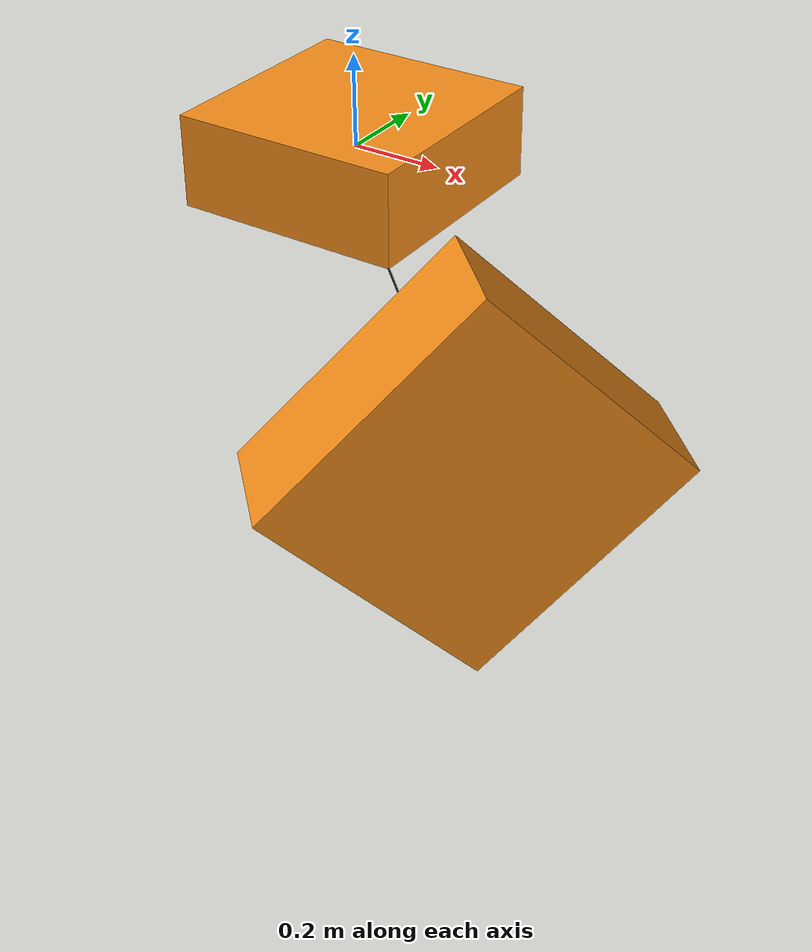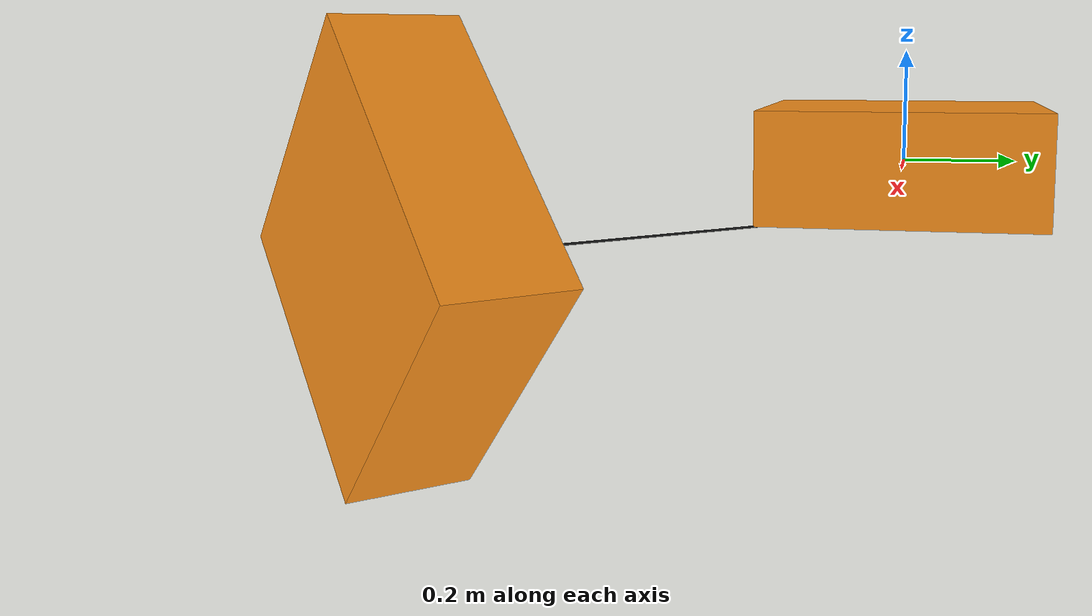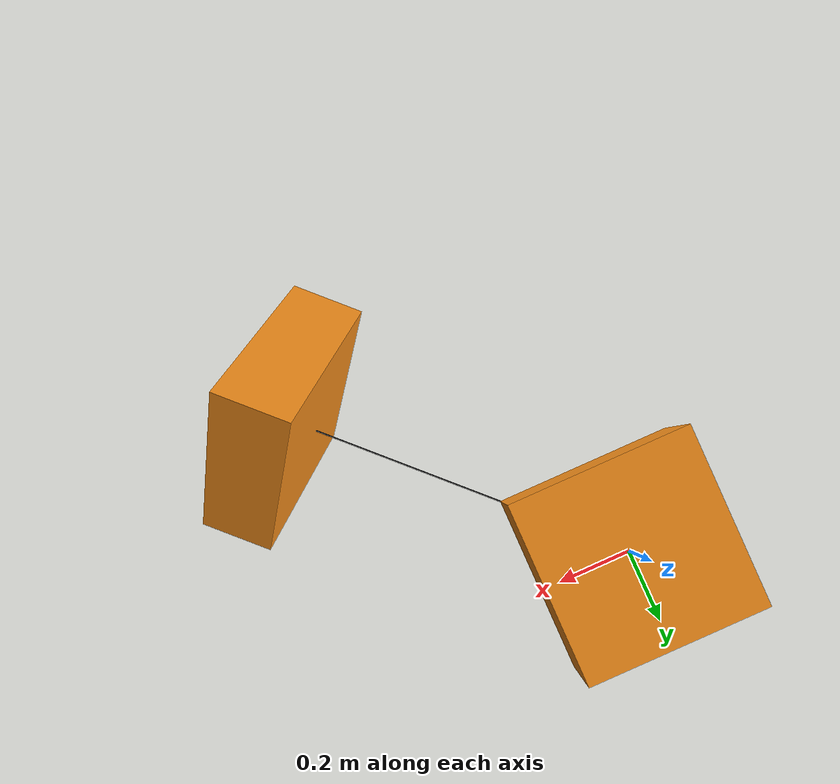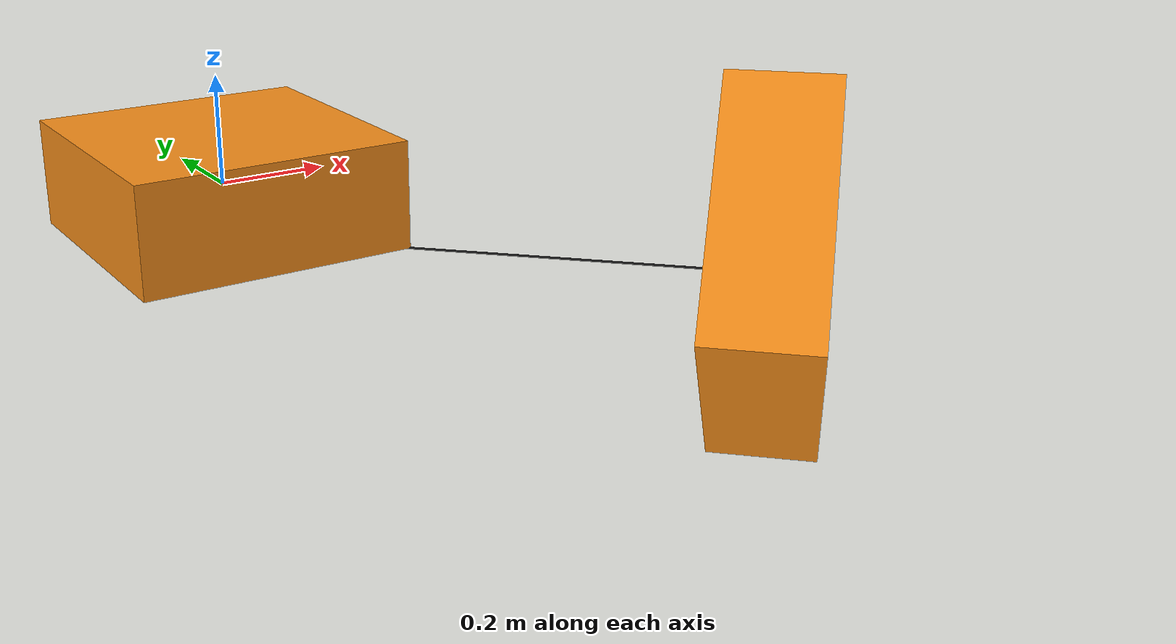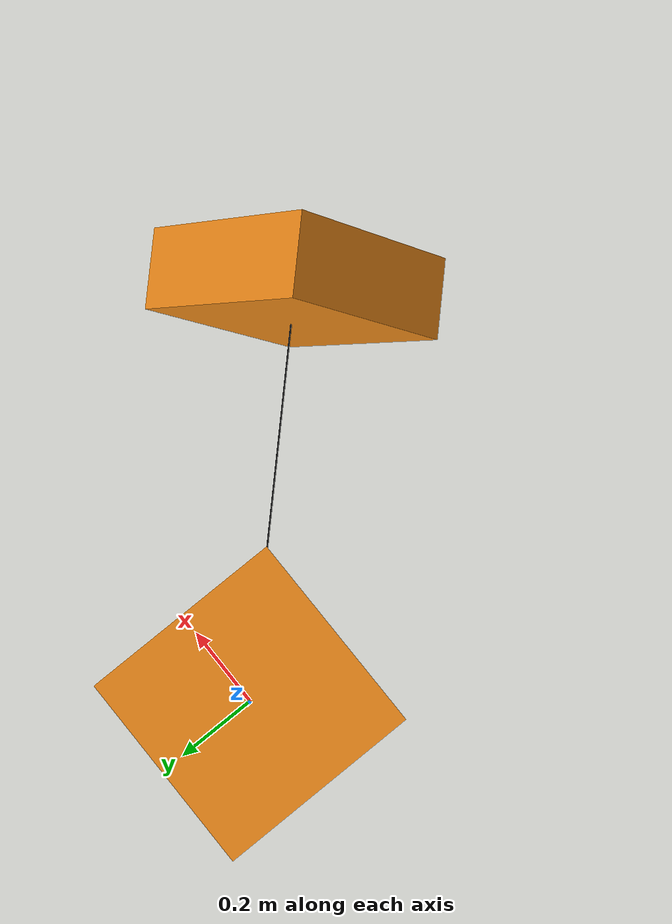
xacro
<?xml version="1.0"?>
<robot name="spherical_pendulum"
       xmlns:xacro="http://www.ros.org/wiki/xacro">

    <!-- Constants for robot dimensions -->
    <xacro:property name="PI" value="3.1415926535897931"/>
    <xacro:property name="mass" value="10"/>
    <xacro:property name="base_width" value="0.5"/>
    <xacro:property name="base_length" value="0.5"/>
    <xacro:property name="base_height" value="0.2"/>
    <xacro:property name="cable_length" value="1"/>
    <xacro:property name="cable_radius" value="0.002"/>
    <xacro:property name="cable_mass" value="0.1"/>

    <!-- Macro to add a spherical_joint_plugin. -->
    <xacro:macro name="spherical_joint_plugin" params="namespace parent_link child_link">
        <gazebo>
            <plugin filename="libspherical_joint_plugin.so" name="spherical_joint_plugin">
                <parent_link>${parent_link}</parent_link>
                <child_link>${child_link}</child_link>
                <namespace>${namespace}</namespace>
            </plugin>
        </gazebo>
    </xacro:macro>

    <!-- Used for fixing robot to Gazebo 'base_link' -->
    <link name="world"/>

    <joint name="fixed" type="floating">
        <parent link="world"/>
        <child link="fixed_base"/>
    </joint>

    <!-- FixedBase Link -->
    <link name="fixed_base">
        <collision>
            <origin xyz="0 0 0" rpy="0 0 0"/>
            <geometry>
                <box size="${base_length} ${base_width} ${base_height}"/>
            </geometry>
        </collision>
        <visual>
            <origin xyz="0 0 0" rpy="0 0 0"/>
            <geometry>
                <box size="${base_length} ${base_width} ${base_height}"/>
            </geometry>
            <material name="orange"/>
        </visual>
        <inertial>
            <origin xyz="0 0 0" rpy="0 0 0"/>
            <mass value="${mass}"/>
            <inertia ixx="0.001" ixy="0.0" ixz="0.0" iyy="0.001" iyz="0.0" izz="0.001"/>
        </inertial>
    </link>

    <!-- Cable Link -->
    <link name="cable">
        <collision>
            <origin xyz="0 0 ${cable_length/2}" rpy="0 0 0"/>
            <geometry>
                <cylinder length="${cable_length}" radius="${cable_radius}"/>
            </geometry>
            <surface>
                <bounce restitution_coefficient="0"/>
            </surface>
        </collision>
        <visual>
            <origin xyz="0 0 ${cable_length/2}" rpy="0 0 0"/>
            <geometry>
                <cylinder length="${cable_length}" radius="${cable_radius}"/>
            </geometry>
        </visual>
        <inertial>
            <origin xyz="0 0 ${cable_length/2}" rpy="0 0 0"/>
            <mass value="${cable_mass}"/>
            <inertia ixx="0.0001" ixy="0.0" ixz="0.0" iyy="0.0001" iyz="0.0" izz="0.0004"/>
        </inertial>
    </link>
    <gazebo reference="cable">
        <material>Gazebo/Black</material>
        <self_collide>0</self_collide>
    </gazebo>

    <!-- Payload Link -->
    <link name="payload">
        <collision>
            <origin xyz="0 0 0" rpy="0 0 0"/>
            <geometry>
                <box size="${base_length} ${base_width} ${base_height}"/>
            </geometry>
        </collision>
        <visual>
            <origin xyz="0 0 0" rpy="0 0 0"/>
            <geometry>
                <box size="${base_length} ${base_width} ${base_height}"/>
            </geometry>
            <material name="orange"/>
        </visual>
        <inertial>
            <origin xyz="0 0 0" rpy="0 0 0"/>
            <mass value="${mass}"/>
            <inertia ixx="0.001" ixy="0.0" ixz="0.0" iyy="0.001" iyz="0.0" izz="0.001"/>
        </inertial>
    </link>

    <joint name="dummy_fixed_base_cable_joint" type="floating">
        <origin xyz="0 0 ${-base_height/2}" rpy="${PI/2} ${PI/4} ${PI/4}"/>
        <parent link="fixed_base"/>
        <child link="cable"/>
    </joint>
    <joint name="dummy_cable_payload_joint" type="floating">
        <origin xyz="0 0 ${cable_length}" rpy="0 0 0"/>
        <parent link="cable"/>
        <child link="payload"/>
    </joint>

    <xacro:spherical_joint_plugin namespace="joint1" parent_link="fixed_base" child_link="cable"/>
    <xacro:spherical_joint_plugin namespace="joint2" parent_link="cable" child_link="payload"/>

</robot>
